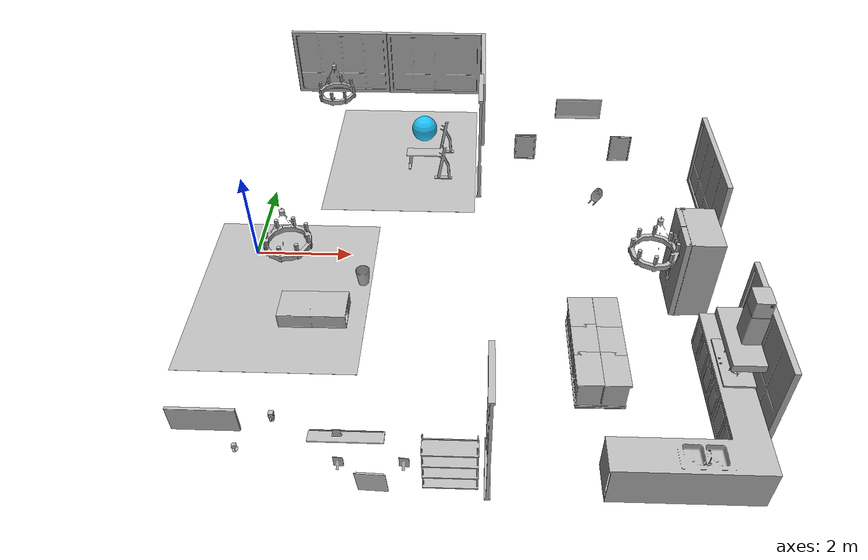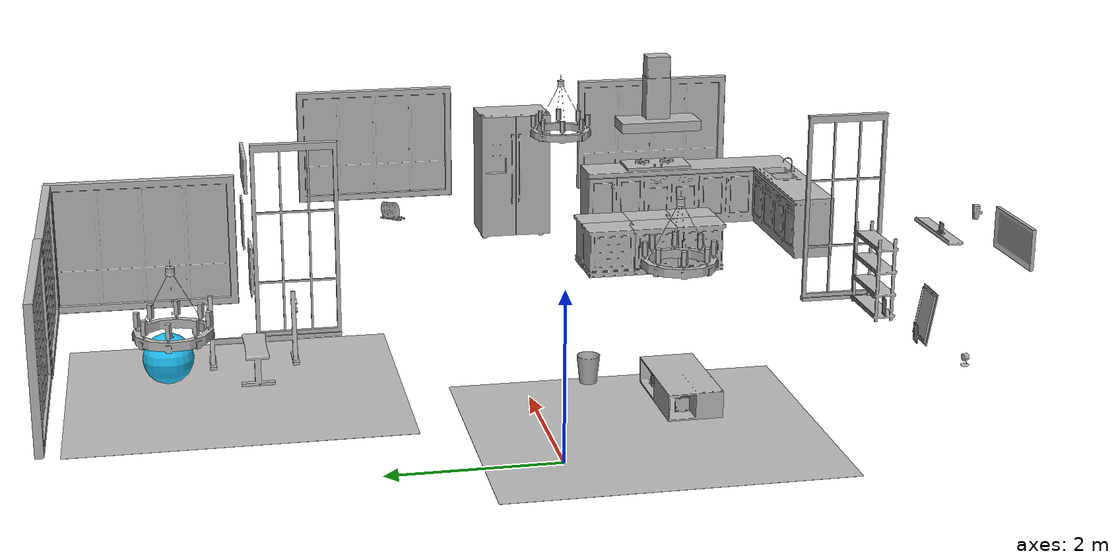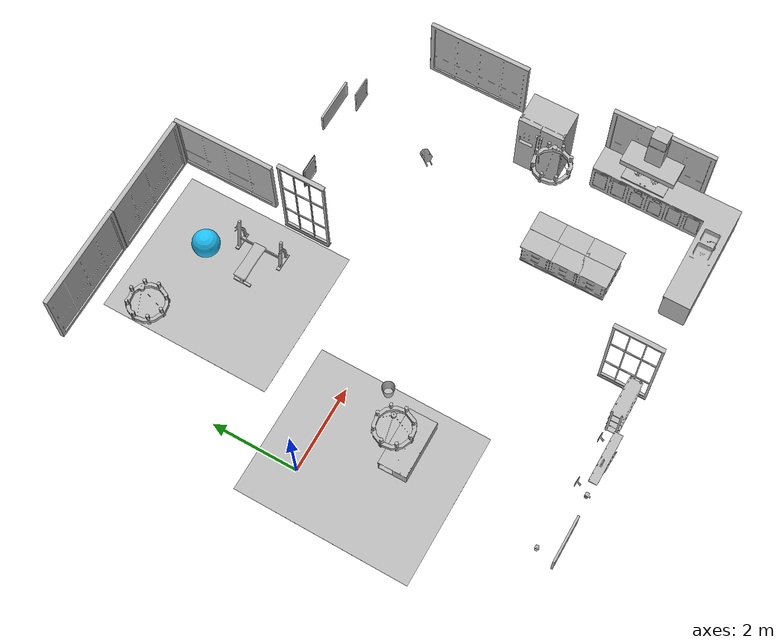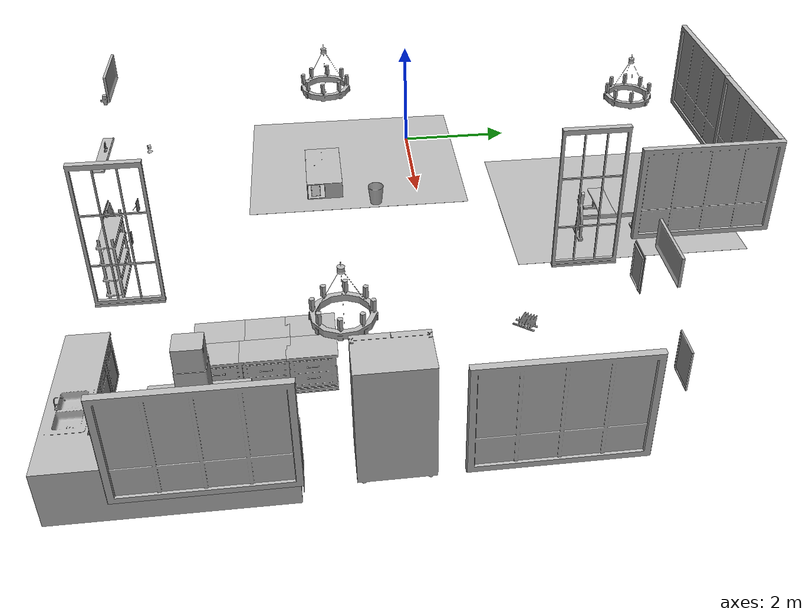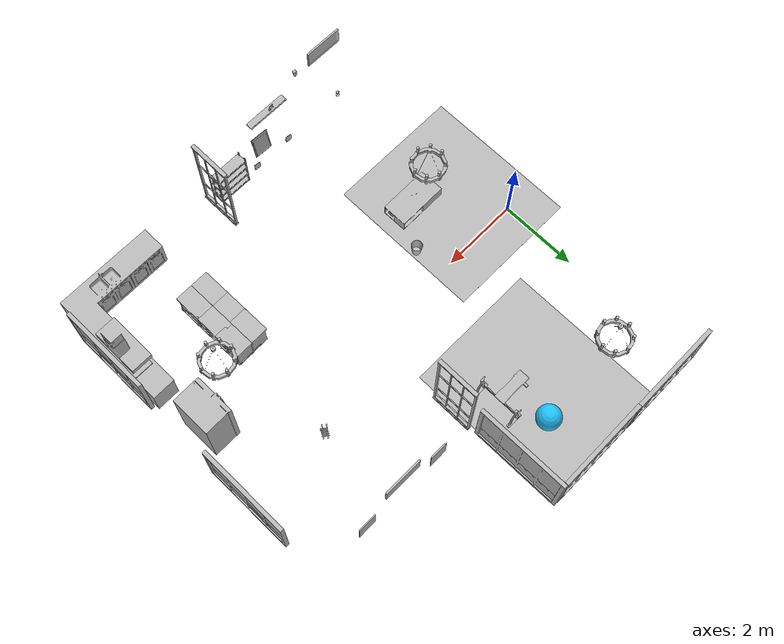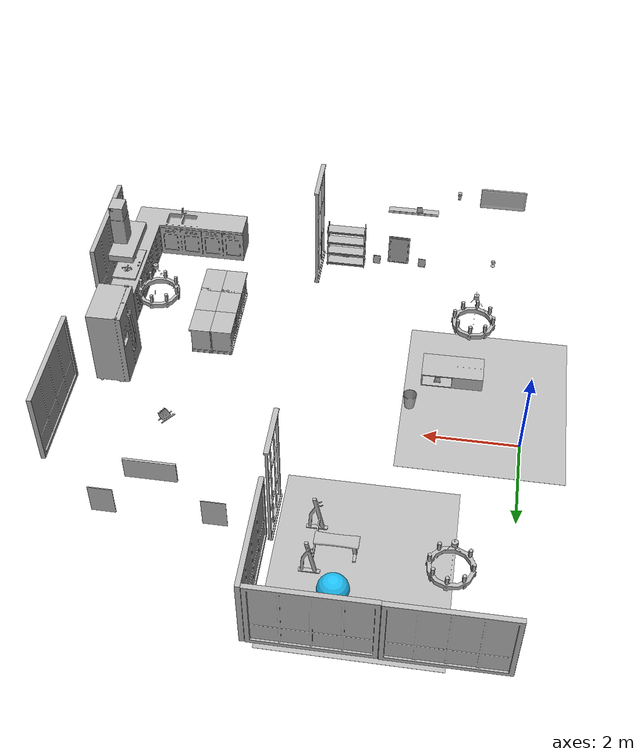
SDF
<sdf version="1.7">
 <world name="default">
  <model name="Ball_01_001">
   <frame name="aws_robomaker_residential_Ball_01::__model__" attached_to="aws_robomaker_residential_Ball_01::link">
    <pose relative_to="__model__">0 0 0 0 -0 0</pose>
   </frame>
   <link name="aws_robomaker_residential_Ball_01::link">
    <inertial>
     <mass>0.12</mass>
     <inertia>
      <ixx>0.030752</ixx>
      <ixy>0</ixy>
      <ixz>0</ixz>
      <iyy>0.030752</iyy>
      <iyz>0</iyz>
      <izz>0.030752</izz>
     </inertia>
    </inertial>
    <collision name="collision">
     <geometry><sphere><radius>0.31</radius></sphere></geometry>
     <surface>
      <friction><ode><mu>0.85</mu><mu2>0.85</mu2></ode></friction>
      <contact><ode><kd>8500</kd><max_vel>5.1</max_vel></ode></contact>
     </surface>
    </collision>
    <visual name="visual">
     <geometry><sphere><radius>0.31</radius></sphere></geometry>
     <material><diffuse>0.12 0.76 0.97 1</diffuse><ambient>0.03 0.21 0.27 1</ambient></material>
     <meta><layer>1</layer></meta>
    </visual>
    <pose relative_to="aws_robomaker_residential_Ball_01::__model__">0 0 0 0 -0 0</pose>
   </link>
   <pose>3.2955 4.22567 0.318684 0 -0 0</pose>
  </model>
  <model name="Board_01_001">
   <frame name="aws_robomaker_residential_Board_01::__model__" attached_to="aws_robomaker_residential_Board_01::link">
    <pose relative_to="__model__">0 0 0 0 -0 0</pose>
   </frame>
   <link name="aws_robomaker_residential_Board_01::link">
    <inertial><mass>1</mass></inertial>
    <collision name="collision">
     <geometry>
      <mesh>
       <uri>model:///aws_robomaker_residential_Board_01/meshes/aws_Board_01_collision.DAE</uri>
       <scale>1 1 1</scale>
      </mesh>
     </geometry>
    </collision>
    <visual name="visual">
     <geometry>
      <mesh><uri>model:///aws_robomaker_residential_Board_01/meshes/aws_Board_01_visual.DAE</uri></mesh>
     </geometry>
     <meta><layer>2</layer></meta>
    </visual>
    <pose relative_to="aws_robomaker_residential_Board_01::__model__">0 0 0 0 -0 0</pose>
   </link>
   <static>1</static>
   <pose>2.77907 -5.3927 1.53817 0 -0 0</pose>
  </model>
  <model name="Chandelier_01_001">
   <frame name="aws_robomaker_residential_Chandelier_01::__model__" attached_to="aws_robomaker_residential_Chandelier_01::link">
    <pose relative_to="__model__">0 0 0 0 -0 0</pose>
   </frame>
   <link name="aws_robomaker_residential_Chandelier_01::link">
    <inertial><mass>1</mass></inertial>
    <collision name="collision">
     <geometry>
      <mesh>
       <uri>model:///aws_robomaker_residential_Chandelier_01/meshes/aws_Chandelier_01_collision.DAE</uri>
       <scale>1 1 1</scale>
      </mesh>
     </geometry>
    </collision>
    <visual name="visual">
     <geometry>
      <mesh><uri>model:///aws_robomaker_residential_Chandelier_01/meshes/aws_Chandelier_01_visual.DAE</uri></mesh>
     </geometry>
     <meta><layer>2</layer></meta>
    </visual>
    <pose relative_to="aws_robomaker_residential_Chandelier_01::__model__">0 0 0 0 -0 0</pose>
   </link>
   <static>1</static>
   <pose>1.22106 4.15574 1.295 0 -0 0</pose>
  </model>
  <model name="Chandelier_01_003">
   <frame name="aws_robomaker_residential_Chandelier_01::__model__" attached_to="aws_robomaker_residential_Chandelier_01::link">
    <pose relative_to="__model__">0 0 0 0 -0 0</pose>
   </frame>
   <link name="aws_robomaker_residential_Chandelier_01::link">
    <inertial><mass>1</mass></inertial>
    <collision name="collision">
     <geometry>
      <mesh>
       <uri>model:///aws_robomaker_residential_Chandelier_01/meshes/aws_Chandelier_01_collision.DAE</uri>
       <scale>1 1 1</scale>
      </mesh>
     </geometry>
    </collision>
    <visual name="visual">
     <geometry>
      <mesh><uri>model:///aws_robomaker_residential_Chandelier_01/meshes/aws_Chandelier_01_visual.DAE</uri></mesh>
     </geometry>
     <meta><layer>2</layer></meta>
    </visual>
    <pose relative_to="aws_robomaker_residential_Chandelier_01::__model__">0 0 0 0 -0 0</pose>
   </link>
   <static>1</static>
   <pose>7.82406 -1.59 1.751 0 -0 0</pose>
  </model>
  <model name="Chandelier_01_004">
   <frame name="aws_robomaker_residential_Chandelier_01::__model__" attached_to="aws_robomaker_residential_Chandelier_01::link">
    <pose relative_to="__model__">0 0 0 0 -0 0</pose>
   </frame>
   <link name="aws_robomaker_residential_Chandelier_01::link">
    <inertial><mass>1</mass></inertial>
    <collision name="collision">
     <geometry>
      <mesh>
       <uri>model:///aws_robomaker_residential_Chandelier_01/meshes/aws_Chandelier_01_collision.DAE</uri>
       <scale>1 1 1</scale>
      </mesh>
     </geometry>
    </collision>
    <visual name="visual">
     <geometry>
      <mesh><uri>model:///aws_robomaker_residential_Chandelier_01/meshes/aws_Chandelier_01_visual.DAE</uri></mesh>
     </geometry>
     <meta><layer>2</layer></meta>
    </visual>
    <pose relative_to="aws_robomaker_residential_Chandelier_01::__model__">0 0 0 0 -0 0</pose>
   </link>
   <static>1</static>
   <pose>1.22106 -1.59204 1.7873 0 -0 0</pose>
  </model>
  <model name="Carpet_01_001">
   <frame name="aws_robomaker_residential_Carpet_01::__model__" attached_to="aws_robomaker_residential_Carpet_01::link">
    <pose relative_to="__model__">0 0 0 0 -0 0</pose>
   </frame>
   <link name="aws_robomaker_residential_Carpet_01::link">
    <inertial><mass>8.1</mass></inertial>
    <collision name="collision">
     <geometry>
      <mesh>
       <uri>model:///aws_robomaker_residential_Carpet_01/meshes/aws_Carpet_01_collision.DAE</uri>
       <scale>1 1 0.95</scale>
      </mesh>
     </geometry>
     <pose>0 0 -0.01 0 -0 0</pose>
    </collision>
    <visual name="visual">
     <geometry>
      <mesh><uri>model:///aws_robomaker_residential_Carpet_01/meshes/aws_Carpet_01_visual.DAE</uri></mesh>
     </geometry>
     <meta><layer>1</layer></meta>
    </visual>
    <pose relative_to="aws_robomaker_residential_Carpet_01::__model__">0 0 0 0 -0 0</pose>
   </link>
   <static>1</static>
   <pose>0.78505 -1.10665 0.001106 0 -0 0</pose>
  </model>
  <model name="Carpet_01_002">
   <frame name="aws_robomaker_residential_Carpet_01::__model__" attached_to="aws_robomaker_residential_Carpet_01::link">
    <pose relative_to="__model__">0 0 0 0 -0 0</pose>
   </frame>
   <link name="aws_robomaker_residential_Carpet_01::link">
    <inertial><mass>8.1</mass></inertial>
    <collision name="collision">
     <geometry>
      <mesh>
       <uri>model:///aws_robomaker_residential_Carpet_01/meshes/aws_Carpet_01_collision.DAE</uri>
       <scale>1 1 0.95</scale>
      </mesh>
     </geometry>
     <pose>0 0 -0.01 0 -0 0</pose>
    </collision>
    <visual name="visual">
     <geometry>
      <mesh><uri>model:///aws_robomaker_residential_Carpet_01/meshes/aws_Carpet_01_visual.DAE</uri></mesh>
     </geometry>
     <meta><layer>1</layer></meta>
    </visual>
    <pose relative_to="aws_robomaker_residential_Carpet_01::__model__">0 0 0 0 -0 0</pose>
   </link>
   <static>1</static>
   <pose>2.85405 3.45 0.000585 0 -0 0</pose>
  </model>
  <model name="SecurityCamera_01_001">
   <frame name="aws_robomaker_residential_SecurityCamera_01::__model__" attached_to="aws_robomaker_residential_SecurityCamera_01::link">
    <pose relative_to="__model__">0 0 0 0 -0 0</pose>
   </frame>
   <link name="aws_robomaker_residential_SecurityCamera_01::link">
    <inertial>
     <mass>1</mass>
     <inertia>
      <ixx>18.2222</ixx>
      <ixy>0</ixy>
      <ixz>0</ixz>
      <iyy>18.2222</iyy>
      <iyz>0</iyz>
      <izz>0.0018767</izz>
     </inertia>
    </inertial>
    <collision name="collision">
     <geometry>
      <mesh>
       <uri>model:///aws_robomaker_residential_SecurityCamera_01/meshes/aws_SecurityCamera_01_collision.DAE</uri>
       <scale>1 1 1</scale>
      </mesh>
     </geometry>
    </collision>
    <visual name="visual">
     <geometry>
      <mesh>
       <uri>model:///aws_robomaker_residential_SecurityCamera_01/meshes/aws_SecurityCamera_01_visual.DAE</uri>
      </mesh>
     </geometry>
     <meta><layer>2</layer></meta>
    </visual>
    <pose relative_to="aws_robomaker_residential_SecurityCamera_01::__model__">0 0 0 0 -0 0</pose>
   </link>
   <pose>0.842134 -4.99629 0.495067 0 0 -2.84104</pose>
  </model>
  <model name="CoffeeTable_01_001">
   <frame name="aws_robomaker_residential_CoffeeTable_01::__model__" attached_to="aws_robomaker_residential_CoffeeTable_01::link">
    <pose relative_to="__model__">0 0 0 0 -0 0</pose>
   </frame>
   <link name="aws_robomaker_residential_CoffeeTable_01::link">
    <inertial>
     <mass>21.7</mass>
     <inertia><ixx>0.81375</ixx><ixy>0</ixy><ixz>0</ixz><iyy>2.76675</iyy><iyz>0</iyz><izz>3.254</izz></inertia>
    </inertial>
    <collision name="collision">
     <geometry>
      <mesh>
       <uri>model:///aws_robomaker_residential_CoffeeTable_01/meshes/aws_CoffeeTable_01_collision.DAE</uri>
       <scale>1 1 1</scale>
      </mesh>
     </geometry>
     <surface><contact><ode><max_vel>0.01</max_vel></ode></contact></surface>
    </collision>
    <visual name="visual">
     <geometry>
      <mesh><uri>model:///aws_robomaker_residential_CoffeeTable_01/meshes/aws_CoffeeTable_01_visual.DAE</uri></mesh>
     </geometry>
     <meta><layer>1</layer></meta>
    </visual>
    <pose relative_to="aws_robomaker_residential_CoffeeTable_01::__model__">0 0 0 0 -0 0</pose>
   </link>
   <static>0</static>
   <pose>1.5123 -1.73344 0.041983 0 -0 0.01</pose>
  </model>
  <model name="CookingBench_01_001">
   <frame name="aws_robomaker_residential_CookingBench_01::__model__" attached_to="aws_robomaker_residential_CookingBench_01::link">
    <pose relative_to="__model__">0 0 0 0 -0 0</pose>
   </frame>
   <link name="aws_robomaker_residential_CookingBench_01::link">
    <inertial>
     <mass>1</mass>
     <inertia><ixx>1</ixx><ixy>0</ixy><ixz>0</ixz><iyy>1</iyy><iyz>0</iyz><izz>1</izz></inertia>
    </inertial>
    <collision name="collision">
     <geometry>
      <mesh>
       <uri>model:///aws_robomaker_residential_CookingBench_01/meshes/aws_CookingBench_01_collision.DAE</uri>
       <scale>1 1 1</scale>
      </mesh>
     </geometry>
    </collision>
    <visual name="visual">
     <geometry>
      <mesh>
       <uri>model:///aws_robomaker_residential_CookingBench_01/meshes/aws_CookingBench_01_visual.DAE</uri>
      </mesh>
     </geometry>
     <meta><layer>1</layer></meta>
    </visual>
    <pose relative_to="aws_robomaker_residential_CookingBench_01::__model__">0 0 0 0 -0 0</pose>
   </link>
   <pose>9.03838 -3.35114 0.90361 0 -0 3.13713</pose>
  </model>
  <model name="FitnessEquipment_01_001">
   <frame name="aws_robomaker_residential_FitnessEquipment_01::__model__" attached_to="aws_robomaker_residential_FitnessEquipment_01::link">
    <pose relative_to="__model__">0 0 0 0 -0 0</pose>
   </frame>
   <link name="aws_robomaker_residential_FitnessEquipment_01::link">
    <inertial>
     <mass>80</mass>
     <inertia><ixx>1</ixx><ixy>0</ixy><ixz>0</ixz><iyy>1</iyy><iyz>0</iyz><izz>1</izz></inertia>
    </inertial>
    <collision name="collision">
     <geometry>
      <mesh>
       <uri>model:///aws_robomaker_residential_FitnessEquipment_01/meshes/aws_FitnessEquipment_01_collision.DAE</uri>
       <scale>1 1 1</scale>
      </mesh>
     </geometry>
    </collision>
    <visual name="visual">
     <geometry>
      <mesh>
       <uri>model:///aws_robomaker_residential_FitnessEquipment_01/meshes/aws_FitnessEquipment_01_visual.DAE</uri>
      </mesh>
     </geometry>
     <meta><layer>1</layer></meta>
    </visual>
    <pose relative_to="aws_robomaker_residential_FitnessEquipment_01::__model__">0 0 0 0 -0 0</pose>
   </link>
   <static>0</static>
   <pose>3.48472 3.1691 0.003168 0 -0 0</pose>
  </model>
  <model name="FoldingDoor_02_001">
   <frame name="aws_robomaker_residential_FoldingDoor_02::__model__" attached_to="aws_robomaker_residential_FoldingDoor_02::link">
    <pose relative_to="__model__">0 0 0 0 -0 0</pose>
   </frame>
   <link name="aws_robomaker_residential_FoldingDoor_02::link">
    <inertial><mass>1</mass></inertial>
    <collision name="collision">
     <geometry>
      <mesh>
       <uri>model:///aws_robomaker_residential_FoldingDoor_02/meshes/aws_FoldingDoor_02_collision.DAE</uri>
       <scale>1 1 1</scale>
      </mesh>
     </geometry>
    </collision>
    <visual name="visual">
     <geometry>
      <mesh><uri>model:///aws_robomaker_residential_FoldingDoor_02/meshes/aws_FoldingDoor_02_visual.DAE</uri></mesh>
     </geometry>
     <meta><layer>2</layer></meta>
    </visual>
    <pose relative_to="aws_robomaker_residential_FoldingDoor_02::__model__">0 0 0 0 -0 0</pose>
   </link>
   <static>1</static>
   <pose>4.67423 2.46451 0 0 -0 3.14159</pose>
  </model>
  <model name="FoldingDoor_02_002">
   <frame name="aws_robomaker_residential_FoldingDoor_02::__model__" attached_to="aws_robomaker_residential_FoldingDoor_02::link">
    <pose relative_to="__model__">0 0 0 0 -0 0</pose>
   </frame>
   <link name="aws_robomaker_residential_FoldingDoor_02::link">
    <inertial><mass>1</mass></inertial>
    <collision name="collision">
     <geometry>
      <mesh>
       <uri>model:///aws_robomaker_residential_FoldingDoor_02/meshes/aws_FoldingDoor_02_collision.DAE</uri>
       <scale>1 1 1</scale>
      </mesh>
     </geometry>
    </collision>
    <visual name="visual">
     <geometry>
      <mesh><uri>model:///aws_robomaker_residential_FoldingDoor_02/meshes/aws_FoldingDoor_02_visual.DAE</uri></mesh>
     </geometry>
     <meta><layer>2</layer></meta>
    </visual>
    <pose relative_to="aws_robomaker_residential_FoldingDoor_02::__model__">0 0 0 0 -0 0</pose>
   </link>
   <static>1</static>
   <pose>4.8912 -4.84968 0 0 -0 0</pose>
  </model>
  <model name="KitchenCabinet_01_001">
   <frame name="aws_robomaker_residential_KitchenCabinet_01::__model__" attached_to="aws_robomaker_residential_KitchenCabinet_01::link">
    <pose relative_to="__model__">0 0 0 0 -0 0</pose>
   </frame>
   <link name="aws_robomaker_residential_KitchenCabinet_01::link">
    <inertial><mass>1</mass></inertial>
    <collision name="collision">
     <geometry>
      <mesh>
       <uri>model:///aws_robomaker_residential_KitchenCabinet_01/meshes/aws_KitchenCabinet_01_collision.DAE</uri>
       <scale>1 1 1</scale>
      </mesh>
     </geometry>
    </collision>
    <visual name="visual">
     <geometry>
      <mesh>
       <uri>model:///aws_robomaker_residential_KitchenCabinet_01/meshes/aws_KitchenCabinet_01_visual.DAE</uri>
      </mesh>
     </geometry>
     <meta><layer>1</layer></meta>
    </visual>
    <pose relative_to="aws_robomaker_residential_KitchenCabinet_01::__model__">0 0 0 0 -0 0</pose>
   </link>
   <static>1</static>
   <pose>8.00201 -3.83651 0.012068 0 0 -3.14</pose>
  </model>
  <model name="LightC_01_001">
   <frame name="aws_robomaker_residential_LightC_01::__model__" attached_to="aws_robomaker_residential_LightC_01::link">
    <pose relative_to="__model__">0 0 0 0 -0 0</pose>
   </frame>
   <link name="aws_robomaker_residential_LightC_01::link">
    <inertial>
     <mass>1</mass>
     <inertia><ixx>1</ixx><ixy>0</ixy><ixz>0</ixz><iyy>1</iyy><iyz>0</iyz><izz>1</izz></inertia>
    </inertial>
    <collision name="collision">
     <geometry>
      <mesh>
       <uri>model:///aws_robomaker_residential_LightC_01/meshes/aws_LightC_01_collision.DAE</uri>
       <scale>1 1 1</scale>
      </mesh>
     </geometry>
    </collision>
    <visual name="visual">
     <geometry>
      <mesh><uri>model:///aws_robomaker_residential_LightC_01/meshes/aws_LightC_01_visual.DAE</uri></mesh>
     </geometry>
     <meta><layer>2</layer></meta>
    </visual>
    <pose relative_to="aws_robomaker_residential_LightC_01::__model__">0 0 0 0 -0 0</pose>
   </link>
   <static>0</static>
   <pose>1.76957 -5.44437 2 0 -0 0</pose>
  </model>
  <model name="PortraitB_02">
   <frame name="aws_robomaker_residential_PortraitB_02::__model__" attached_to="aws_robomaker_residential_PortraitB_02::link">
    <pose relative_to="__model__">0 0 0 0 -0 0</pose>
   </frame>
   <link name="aws_robomaker_residential_PortraitB_02::link">
    <inertial><mass>1</mass></inertial>
    <collision name="collision">
     <geometry>
      <mesh>
       <uri>model:///aws_robomaker_residential_PortraitB_02/meshes/aws_PortraitB_01_collision.DAE</uri>
       <scale>1 1 1</scale>
      </mesh>
     </geometry>
    </collision>
    <visual name="visual">
     <geometry>
      <mesh><uri>model:///aws_robomaker_residential_PortraitB_02/meshes/aws_PortraitB_01_visual.DAE</uri></mesh>
     </geometry>
     <meta><layer>2</layer></meta>
    </visual>
    <pose relative_to="aws_robomaker_residential_PortraitB_02::__model__">0 0 0 0 -0 0</pose>
   </link>
   <static>1</static>
   <pose>5.73702 3.08031 0.3 0 -0 0</pose>
  </model>
  <model name="PortraitB_03">
   <frame name="aws_robomaker_residential_PortraitB_03::__model__" attached_to="aws_robomaker_residential_PortraitB_03::link">
    <pose relative_to="__model__">0 0 0 0 -0 0</pose>
   </frame>
   <link name="aws_robomaker_residential_PortraitB_03::link">
    <inertial><mass>1</mass></inertial>
    <collision name="collision">
     <geometry>
      <mesh>
       <uri>model:///aws_robomaker_residential_PortraitB_03/meshes/aws_PortraitB_01_collision.DAE</uri>
       <scale>1 1 1</scale>
      </mesh>
     </geometry>
    </collision>
    <visual name="visual">
     <geometry>
      <mesh><uri>model:///aws_robomaker_residential_PortraitB_03/meshes/aws_PortraitB_01_visual.DAE</uri></mesh>
     </geometry>
     <meta><layer>2</layer></meta>
    </visual>
    <pose relative_to="aws_robomaker_residential_PortraitB_03::__model__">0 0 0 0 -0 0</pose>
   </link>
   <static>1</static>
   <pose>3.07138 -5.34937 0.005494 -0.168428 -0 3.10423</pose>
  </model>
  <model name="PortraitA_02">
   <frame name="aws_robomaker_residential_PortraitA_02::__model__" attached_to="aws_robomaker_residential_PortraitA_02::link">
    <pose relative_to="__model__">0 0 0 0 -0 0</pose>
   </frame>
   <link name="aws_robomaker_residential_PortraitA_02::link">
    <inertial><mass>1</mass></inertial>
    <collision name="collision">
     <geometry>
      <mesh>
       <uri>model:///aws_robomaker_residential_PortraitA_02/meshes/aws_PortraitA_01_collision.DAE</uri>
       <scale>1 1 1</scale>
      </mesh>
     </geometry>
    </collision>
    <visual name="visual">
     <geometry>
      <mesh><uri>model:///aws_robomaker_residential_PortraitA_02/meshes/aws_PortraitA_01_visual.DAE</uri></mesh>
     </geometry>
     <meta><layer>2</layer></meta>
    </visual>
    <pose relative_to="aws_robomaker_residential_PortraitA_02::__model__">0 0 0 0 -0 0</pose>
   </link>
   <static>1</static>
   <pose>7.93702 3.08031 0.3 0 -0 3.14</pose>
  </model>
  <model name="PortraitD_01">
   <frame name="aws_robomaker_residential_PortraitD_01::__model__" attached_to="aws_robomaker_residential_PortraitD_01::link">
    <pose relative_to="__model__">0 0 0 0 -0 0</pose>
   </frame>
   <link name="aws_robomaker_residential_PortraitD_01::link">
    <inertial><mass>1.5</mass></inertial>
    <collision name="collision">
     <geometry>
      <mesh>
       <uri>model:///aws_robomaker_residential_PortraitD_01/meshes/aws_PortraitD_01_collision.DAE</uri>
       <scale>1 1 1</scale>
      </mesh>
     </geometry>
    </collision>
    <visual name="visual">
     <geometry>
      <mesh><uri>model:///aws_robomaker_residential_PortraitD_01/meshes/aws_PortraitD_01_visual.DAE</uri></mesh>
     </geometry>
     <meta><layer>2</layer></meta>
    </visual>
    <pose relative_to="aws_robomaker_residential_PortraitD_01::__model__">0 0 0 0 -0 0</pose>
   </link>
   <static>1</static>
   <pose>0.789763 -5.47872 1.8 0 -0 3.13853</pose>
  </model>
  <model name="PortraitD_02">
   <frame name="aws_robomaker_residential_PortraitD_02::__model__" attached_to="aws_robomaker_residential_PortraitD_02::link">
    <pose relative_to="__model__">0 0 0 0 -0 0</pose>
   </frame>
   <link name="aws_robomaker_residential_PortraitD_02::link">
    <inertial><mass>1.5</mass></inertial>
    <collision name="collision">
     <geometry>
      <mesh>
       <uri>model:///aws_robomaker_residential_PortraitD_02/meshes/aws_PortraitD_01_collision.DAE</uri>
       <scale>1 1 1</scale>
      </mesh>
     </geometry>
    </collision>
    <visual name="visual">
     <geometry>
      <mesh><uri>model:///aws_robomaker_residential_PortraitD_02/meshes/aws_PortraitD_01_visual.DAE</uri></mesh>
     </geometry>
     <meta><layer>2</layer></meta>
    </visual>
    <pose relative_to="aws_robomaker_residential_PortraitD_02::__model__">0 0 0 0 -0 0</pose>
   </link>
   <static>1</static>
   <pose>6.87018 3.08031 1.48844 0 -0 0</pose>
  </model>
  <model name="DeskPortraitA_02">
   <frame name="aws_robomaker_residential_DeskPortraitA_02::__model__" attached_to="aws_robomaker_residential_DeskPortraitA_02::link">
    <pose relative_to="__model__">0 0 0 0 -0 0</pose>
   </frame>
   <link name="aws_robomaker_residential_DeskPortraitA_02::link">
    <inertial>
     <mass>1</mass>
     <inertia><ixx>0.0835</ixx><ixy>0</ixy><ixz>0</ixz><iyy>0.16</iyy><iyz>0</iyz><izz>0.08347</izz></inertia>
    </inertial>
    <collision name="collision">
     <geometry>
      <mesh>
       <uri>model:///aws_robomaker_residential_DeskPortraitA_02/meshes/aws_DeskPortraitA_01_collision.DAE</uri>
       <scale>1 1 1</scale>
      </mesh>
     </geometry>
    </collision>
    <visual name="visual">
     <geometry>
      <mesh>
       <uri>model:///aws_robomaker_residential_DeskPortraitA_02/meshes/aws_DeskPortraitA_01_visual.DAE</uri>
      </mesh>
     </geometry>
     <meta><layer>1</layer></meta>
    </visual>
    <pose relative_to="aws_robomaker_residential_DeskPortraitA_02::__model__">0 0 0 0 -0 0</pose>
   </link>
   <pose>2.04608 -1.89293 0.070388 -0.018328 -0.000441 1.57622</pose>
  </model>
  <model name="DeskPortraitC_02">
   <frame name="aws_robomaker_residential_DeskPortraitC_02::__model__" attached_to="aws_robomaker_residential_DeskPortraitC_02::link">
    <pose relative_to="__model__">0 0 0 0 -0 0</pose>
   </frame>
   <link name="aws_robomaker_residential_DeskPortraitC_02::link">
    <inertial>
     <mass>1</mass>
     <inertia><ixx>0.0835</ixx><ixy>0</ixy><ixz>0</ixz><iyy>0.16</iyy><iyz>0</iyz><izz>0.08347</izz></inertia>
    </inertial>
    <collision name="collision">
     <geometry>
      <mesh>
       <uri>model:///aws_robomaker_residential_DeskPortraitC_02/meshes/aws_DeskPortraitC_01_collision.DAE</uri>
       <scale>1 1 1</scale>
      </mesh>
     </geometry>
    </collision>
    <visual name="visual">
     <geometry>
      <mesh>
       <uri>model:///aws_robomaker_residential_DeskPortraitC_02/meshes/aws_DeskPortraitC_01_visual.DAE</uri>
      </mesh>
     </geometry>
     <meta><layer>1</layer></meta>
    </visual>
    <pose relative_to="aws_robomaker_residential_DeskPortraitC_02::__model__">0 0 0 0 -0 0</pose>
   </link>
   <pose>0.964613 -1.58695 0.127676 0.001614 -0.000545 -1.5787</pose>
  </model>
  <model name="DeskPortraitD_01">
   <frame name="aws_robomaker_residential_DeskPortraitD_01::__model__" attached_to="aws_robomaker_residential_DeskPortraitD_01::link">
    <pose relative_to="__model__">0 0 0 0 -0 0</pose>
   </frame>
   <link name="aws_robomaker_residential_DeskPortraitD_01::link">
    <inertial>
     <mass>0.4</mass>
     <inertia><ixx>0.0616</ixx><ixy>0</ixy><ixz>0</ixz><iyy>0.1313</iyy><iyz>0</iyz><izz>0.0803</izz></inertia>
    </inertial>
    <collision name="collision">
     <geometry>
      <mesh>
       <uri>model:///aws_robomaker_residential_DeskPortraitD_01/meshes/aws_DeskPortraitD_01_collision.DAE</uri>
       <scale>1 1 1</scale>
      </mesh>
     </geometry>
     <surface>
      <friction><ode><mu>0.7</mu><mu2>0.7</mu2></ode></friction>
      <contact><ode><kd>28500</kd></ode></contact>
     </surface>
    </collision>
    <visual name="visual">
     <geometry>
      <mesh>
       <uri>model:///aws_robomaker_residential_DeskPortraitD_01/meshes/aws_DeskPortraitD_01_visual.DAE</uri>
      </mesh>
     </geometry>
     <meta><layer>1</layer></meta>
    </visual>
    <pose relative_to="aws_robomaker_residential_DeskPortraitD_01::__model__">0 0 0 0 -0 0</pose>
   </link>
   <pose>2.64556 -5.37622 1.57374 0 0 -3.11283</pose>
  </model>
  <model name="DeskPortraitD_03">
   <frame name="aws_robomaker_residential_DeskPortraitD_03::__model__" attached_to="aws_robomaker_residential_DeskPortraitD_03::link">
    <pose relative_to="__model__">0 0 0 0 -0 0</pose>
   </frame>
   <link name="aws_robomaker_residential_DeskPortraitD_03::link">
    <inertial>
     <mass>0.4</mass>
     <inertia><ixx>0.0616</ixx><ixy>0</ixy><ixz>0</ixz><iyy>0.1313</iyy><iyz>0</iyz><izz>0.0803</izz></inertia>
    </inertial>
    <collision name="collision">
     <geometry>
      <mesh>
       <uri>model:///aws_robomaker_residential_DeskPortraitD_03/meshes/aws_DeskPortraitD_01_collision.DAE</uri>
       <scale>1 1 1</scale>
      </mesh>
     </geometry>
     <surface>
      <friction><ode><mu>0.7</mu><mu2>0.7</mu2></ode></friction>
      <contact><ode><kd>28500</kd></ode></contact>
     </surface>
    </collision>
    <visual name="visual">
     <geometry>
      <mesh>
       <uri>model:///aws_robomaker_residential_DeskPortraitD_03/meshes/aws_DeskPortraitD_01_visual.DAE</uri>
      </mesh>
     </geometry>
     <meta><layer>1</layer></meta>
    </visual>
    <pose relative_to="aws_robomaker_residential_DeskPortraitD_03::__model__">0 0 0 0 -0 0</pose>
   </link>
   <pose>1.82673 -1.46488 0.126208 1e-05 6e-06 -3.11438</pose>
  </model>
  <model name="DeskPortraitD_04">
   <frame name="aws_robomaker_residential_DeskPortraitD_04::__model__" attached_to="aws_robomaker_residential_DeskPortraitD_04::link">
    <pose relative_to="__model__">0 0 0 0 -0 0</pose>
   </frame>
   <link name="aws_robomaker_residential_DeskPortraitD_04::link">
    <inertial>
     <mass>0.4</mass>
     <inertia><ixx>0.0616</ixx><ixy>0</ixy><ixz>0</ixz><iyy>0.1313</iyy><iyz>0</iyz><izz>0.0803</izz></inertia>
    </inertial>
    <collision name="collision">
     <geometry>
      <mesh>
       <uri>model:///aws_robomaker_residential_DeskPortraitD_04/meshes/aws_DeskPortraitD_01_collision.DAE</uri>
       <scale>1 1 1</scale>
      </mesh>
     </geometry>
     <surface>
      <friction><ode><mu>0.7</mu><mu2>0.7</mu2></ode></friction>
      <contact><ode><kd>28500</kd></ode></contact>
     </surface>
    </collision>
    <visual name="visual">
     <geometry>
      <mesh>
       <uri>model:///aws_robomaker_residential_DeskPortraitD_04/meshes/aws_DeskPortraitD_01_visual.DAE</uri>
      </mesh>
     </geometry>
     <meta><layer>1</layer></meta>
    </visual>
    <pose relative_to="aws_robomaker_residential_DeskPortraitD_04::__model__">0 0 0 0 -0 0</pose>
   </link>
   <pose>4.30213 -5.17657 0.202496 0.007118 -1e-06 3.04668</pose>
  </model>
  <model name="DeskPortraitB_01">
   <frame name="aws_robomaker_residential_DeskPortraitB_01::__model__" attached_to="aws_robomaker_residential_DeskPortraitB_01::link">
    <pose relative_to="__model__">0 0 0 0 -0 0</pose>
   </frame>
   <link name="aws_robomaker_residential_DeskPortraitB_01::link">
    <inertial>
     <mass>1</mass>
     <inertia><ixx>0.0135</ixx><ixy>0</ixy><ixz>0</ixz><iyy>0.02</iyy><iyz>0</iyz><izz>0.01347</izz></inertia>
    </inertial>
    <collision name="collision">
     <geometry>
      <mesh>
       <uri>model:///aws_robomaker_residential_DeskPortraitB_01/meshes/aws_DeskPortraitB_01_collision.DAE</uri>
       <scale>1 1 1</scale>
      </mesh>
     </geometry>
    </collision>
    <visual name="visual">
     <geometry>
      <mesh>
       <uri>model:///aws_robomaker_residential_DeskPortraitB_01/meshes/aws_DeskPortraitB_01_visual.DAE</uri>
      </mesh>
     </geometry>
     <meta><layer>1</layer></meta>
    </visual>
    <pose relative_to="aws_robomaker_residential_DeskPortraitB_01::__model__">0 0 0 0 -0 0</pose>
   </link>
   <pose>3.547 -5.08795 0.202496 0.007118 -1e-06 3.04668</pose>
  </model>
  <model name="DeskPortraitB_02">
   <frame name="aws_robomaker_residential_DeskPortraitB_02::__model__" attached_to="aws_robomaker_residential_DeskPortraitB_02::link">
    <pose relative_to="__model__">0 0 0 0 -0 0</pose>
   </frame>
   <link name="aws_robomaker_residential_DeskPortraitB_02::link">
    <inertial>
     <mass>1</mass>
     <inertia><ixx>0.0135</ixx><ixy>0</ixy><ixz>0</ixz><iyy>0.02</iyy><iyz>0</iyz><izz>0.01347</izz></inertia>
    </inertial>
    <collision name="collision">
     <geometry>
      <mesh>
       <uri>model:///aws_robomaker_residential_DeskPortraitB_02/meshes/aws_DeskPortraitB_01_collision.DAE</uri>
       <scale>1 1 1</scale>
      </mesh>
     </geometry>
    </collision>
    <visual name="visual">
     <geometry>
      <mesh>
       <uri>model:///aws_robomaker_residential_DeskPortraitB_02/meshes/aws_DeskPortraitB_01_visual.DAE</uri>
      </mesh>
     </geometry>
     <meta><layer>1</layer></meta>
    </visual>
    <pose relative_to="aws_robomaker_residential_DeskPortraitB_02::__model__">0 0 0 0 -0 0</pose>
   </link>
   <pose>2.48608 -5.10457 0.202496 0.007118 -1e-06 3.04668</pose>
  </model>
  <model name="Rangehood_01_001">
   <frame name="aws_robomaker_residential_Rangehood_01::__model__" attached_to="aws_robomaker_residential_Rangehood_01::link">
    <pose relative_to="__model__">0 0 0 0 -0 0</pose>
   </frame>
   <link name="aws_robomaker_residential_Rangehood_01::link">
    <inertial><mass>1</mass></inertial>
    <collision name="collision">
     <geometry>
      <mesh>
       <uri>model:///aws_robomaker_residential_Rangehood_01/meshes/aws_Rangehood_01_collision.DAE</uri>
       <scale>1 1 1</scale>
      </mesh>
     </geometry>
    </collision>
    <visual name="visual">
     <geometry>
      <mesh><uri>model:///aws_robomaker_residential_Rangehood_01/meshes/aws_Rangehood_01_visual.DAE</uri></mesh>
     </geometry>
     <meta><layer>2</layer></meta>
    </visual>
    <pose relative_to="aws_robomaker_residential_Rangehood_01::__model__">0 0 0 0 -0 0</pose>
   </link>
   <static>1</static>
   <pose>9.01979 -3.36994 1.50761 0 -0 0</pose>
  </model>
  <model name="Refrigerator_01_001">
   <frame name="aws_robomaker_residential_Refrigerator_01::__model__" attached_to="aws_robomaker_residential_Refrigerator_01::link">
    <pose relative_to="__model__">0 0 0 0 -0 0</pose>
   </frame>
   <link name="aws_robomaker_residential_Refrigerator_01::link">
    <inertial>
     <mass>1</mass>
     <inertia><ixx>1</ixx><ixy>0</ixy><ixz>0</ixz><iyy>1</iyy><iyz>0</iyz><izz>1</izz></inertia>
    </inertial>
    <collision name="collision">
     <geometry>
      <mesh>
       <uri>model:///aws_robomaker_residential_Refrigerator_01/meshes/aws_Refrigerator_01_collision.DAE</uri>
       <scale>1 1 1</scale>
      </mesh>
     </geometry>
    </collision>
    <visual name="visual">
     <geometry>
      <mesh>
       <uri>model:///aws_robomaker_residential_Refrigerator_01/meshes/aws_Refrigerator_01_visual.DAE</uri>
      </mesh>
     </geometry>
     <meta><layer>1</layer></meta>
    </visual>
    <pose relative_to="aws_robomaker_residential_Refrigerator_01::__model__">0 0 0 0 -0 0</pose>
   </link>
   <static>0</static>
   <pose>8.70273 -1.03203 0 0 0 -1.5635</pose>
  </model>
  <model name="ShoeRack_01_001">
   <frame name="aws_robomaker_residential_ShoeRack_01::__model__" attached_to="aws_robomaker_residential_ShoeRack_01::link">
    <pose relative_to="__model__">0 0 0 0 -0 0</pose>
   </frame>
   <link name="aws_robomaker_residential_ShoeRack_01::link">
    <inertial>
     <mass>6</mass>
     <inertia>
      <ixx>0.02</ixx>
      <ixy>0</ixy>
      <ixz>0</ixz>
      <iyy>0.04</iyy>
      <iyz>0</iyz>
      <ixx>0.02</ixx>
      <izz>1</izz>
     </inertia>
    </inertial>
    <collision name="collision">
     <geometry>
      <mesh>
       <uri>model:///aws_robomaker_residential_ShoeRack_01/meshes/aws_ShoeRack_01_collision.DAE</uri>
       <scale>1 1 1</scale>
      </mesh>
     </geometry>
     <surface>
      <friction><ode><mu>0.2</mu><mu2>0.2</mu2></ode></friction>
      <contact><ode><kd>2500</kd></ode></contact>
     </surface>
    </collision>
    <visual name="visual">
     <geometry>
      <mesh><uri>model:///aws_robomaker_residential_ShoeRack_01/meshes/aws_ShoeRack_01_visual.DAE</uri></mesh>
     </geometry>
     <meta><layer>1</layer></meta>
    </visual>
    <pose relative_to="aws_robomaker_residential_ShoeRack_01::__model__">0 0 0 0 -0 0</pose>
   </link>
   <pose>4.29798 -5.17357 0 0 -0 0</pose>
  </model>
  <model name="Tableware_01_001">
   <frame name="aws_robomaker_residential_Tableware_01::__model__" attached_to="aws_robomaker_residential_Tableware_01::link">
    <pose relative_to="__model__">0 0 0 0 -0 0</pose>
   </frame>
   <link name="aws_robomaker_residential_Tableware_01::link">
    <inertial>
     <mass>1</mass>
     <inertia><ixx>1</ixx><ixy>0</ixy><ixz>0</ixz><iyy>1</iyy><iyz>0</iyz><izz>1</izz></inertia>
    </inertial>
    <collision name="collision">
     <geometry>
      <mesh>
       <uri>model:///aws_robomaker_residential_Tableware_01/meshes/aws_Tableware_01_collision.DAE</uri>
       <scale>1 1 1</scale>
      </mesh>
     </geometry>
    </collision>
    <visual name="visual">
     <geometry>
      <mesh><uri>model:///aws_robomaker_residential_Tableware_01/meshes/aws_Tableware_01_visual.DAE</uri></mesh>
     </geometry>
     <meta><layer>1</layer></meta>
    </visual>
    <pose relative_to="aws_robomaker_residential_Tableware_01::__model__">0 0 0 0 -0 0</pose>
   </link>
   <pose>7.15317 0.982767 0.817812 -0.001238 -0.000976 1.02476</pose>
  </model>
  <model name="Trash_01_001">
   <frame name="aws_robomaker_residential_Trash_01::__model__" attached_to="aws_robomaker_residential_Trash_01::link">
    <pose relative_to="__model__">0 0 0 0 -0 0</pose>
   </frame>
   <link name="aws_robomaker_residential_Trash_01::link">
    <inertial>
     <mass>0.1</mass>
     <inertia><ixy>0</ixy><ixz>0</ixz><iyz>0</iyz><ixx>0.05288</ixx><iyy>0.05288</iyy><izz>0.09132</izz></inertia>
    </inertial>
    <collision name="collision">
     <geometry>
      <mesh>
       <uri>model:///aws_robomaker_residential_Trash_01/meshes/aws_Trash_01_collision.DAE</uri>
       <scale>1 1 1</scale>
      </mesh>
     </geometry>
    </collision>
    <visual name="visual">
     <geometry>
      <mesh><uri>model:///aws_robomaker_residential_Trash_01/meshes/aws_Trash_01_visual.DAE</uri></mesh>
     </geometry>
     <meta><layer>1</layer></meta>
    </visual>
    <pose relative_to="aws_robomaker_residential_Trash_01::__model__">0 0 0 0 -0 0</pose>
   </link>
   <pose>2.36015 -0.796238 0.011 0 -0 0</pose>
  </model>
  <model name="RoomWindow_01_003">
   <frame name="aws_robomaker_residential_RoomWindow_01::__model__" attached_to="aws_robomaker_residential_RoomWindow_01::link">
    <pose relative_to="__model__">0 0 0 0 -0 0</pose>
   </frame>
   <link name="aws_robomaker_residential_RoomWindow_01::link">
    <inertial><mass>1</mass></inertial>
    <collision name="collision">
     <geometry>
      <mesh>
       <uri>model:///aws_robomaker_residential_RoomWindow_01/meshes/aws_RoomWindow_01_collision.DAE</uri>
       <scale>1 1 1</scale>
      </mesh>
     </geometry>
    </collision>
    <visual name="visual">
     <geometry>
      <mesh><uri>model:///aws_robomaker_residential_RoomWindow_01/meshes/aws_RoomWindow_01_visual.DAE</uri></mesh>
     </geometry>
     <meta><layer>2</layer></meta>
    </visual>
    <pose relative_to="aws_robomaker_residential_RoomWindow_01::__model__">0 0 0 0 -0 0</pose>
   </link>
   <static>1</static>
   <pose>9.42262 -3.37398 0.502739 0 0 -3.1361</pose>
  </model>
  <model name="RoomWindow_01_004">
   <frame name="aws_robomaker_residential_RoomWindow_01::__model__" attached_to="aws_robomaker_residential_RoomWindow_01::link">
    <pose relative_to="__model__">0 0 0 0 -0 0</pose>
   </frame>
   <link name="aws_robomaker_residential_RoomWindow_01::link">
    <inertial><mass>1</mass></inertial>
    <collision name="collision">
     <geometry>
      <mesh>
       <uri>model:///aws_robomaker_residential_RoomWindow_01/meshes/aws_RoomWindow_01_collision.DAE</uri>
       <scale>1 1 1</scale>
      </mesh>
     </geometry>
    </collision>
    <visual name="visual">
     <geometry>
      <mesh><uri>model:///aws_robomaker_residential_RoomWindow_01/meshes/aws_RoomWindow_01_visual.DAE</uri></mesh>
     </geometry>
     <meta><layer>2</layer></meta>
    </visual>
    <pose relative_to="aws_robomaker_residential_RoomWindow_01::__model__">0 0 0 0 -0 0</pose>
   </link>
   <static>1</static>
   <pose>9.42256 0.96852 0.496581 0 0 -3.1361</pose>
  </model>
  <model name="RoomWindow_01_005">
   <frame name="aws_robomaker_residential_RoomWindow_01::__model__" attached_to="aws_robomaker_residential_RoomWindow_01::link">
    <pose relative_to="__model__">0 0 0 0 -0 0</pose>
   </frame>
   <link name="aws_robomaker_residential_RoomWindow_01::link">
    <inertial><mass>1</mass></inertial>
    <collision name="collision">
     <geometry>
      <mesh>
       <uri>model:///aws_robomaker_residential_RoomWindow_01/meshes/aws_RoomWindow_01_collision.DAE</uri>
       <scale>1 1 1</scale>
      </mesh>
     </geometry>
    </collision>
    <visual name="visual">
     <geometry>
      <mesh><uri>model:///aws_robomaker_residential_RoomWindow_01/meshes/aws_RoomWindow_01_visual.DAE</uri></mesh>
     </geometry>
     <meta><layer>2</layer></meta>
    </visual>
    <pose relative_to="aws_robomaker_residential_RoomWindow_01::__model__">0 0 0 0 -0 0</pose>
   </link>
   <static>1</static>
   <pose>4.72232 4.47028 0.502739 0 0 -3.1361</pose>
  </model>
  <model name="RoomWindow_01_006">
   <frame name="aws_robomaker_residential_RoomWindow_01::__model__" attached_to="aws_robomaker_residential_RoomWindow_01::link">
    <pose relative_to="__model__">0 0 0 0 -0 0</pose>
   </frame>
   <link name="aws_robomaker_residential_RoomWindow_01::link">
    <inertial><mass>1</mass></inertial>
    <collision name="collision">
     <geometry>
      <mesh>
       <uri>model:///aws_robomaker_residential_RoomWindow_01/meshes/aws_RoomWindow_01_collision.DAE</uri>
       <scale>1 1 1</scale>
      </mesh>
     </geometry>
    </collision>
    <visual name="visual">
     <geometry>
      <mesh><uri>model:///aws_robomaker_residential_RoomWindow_01/meshes/aws_RoomWindow_01_visual.DAE</uri></mesh>
     </geometry>
     <meta><layer>2</layer></meta>
    </visual>
    <pose relative_to="aws_robomaker_residential_RoomWindow_01::__model__">0 0 0 0 -0 0</pose>
   </link>
   <static>1</static>
   <pose>3.48852 5.60069 0.502739 0 0 -1.56627</pose>
  </model>
  <model name="RoomWindow_01_007">
   <frame name="aws_robomaker_residential_RoomWindow_01::__model__" attached_to="aws_robomaker_residential_RoomWindow_01::link">
    <pose relative_to="__model__">0 0 0 0 -0 0</pose>
   </frame>
   <link name="aws_robomaker_residential_RoomWindow_01::link">
    <inertial><mass>1</mass></inertial>
    <collision name="collision">
     <geometry>
      <mesh>
       <uri>model:///aws_robomaker_residential_RoomWindow_01/meshes/aws_RoomWindow_01_collision.DAE</uri>
       <scale>1 1 1</scale>
      </mesh>
     </geometry>
    </collision>
    <visual name="visual">
     <geometry>
      <mesh><uri>model:///aws_robomaker_residential_RoomWindow_01/meshes/aws_RoomWindow_01_visual.DAE</uri></mesh>
     </geometry>
     <meta><layer>2</layer></meta>
    </visual>
    <pose relative_to="aws_robomaker_residential_RoomWindow_01::__model__">0 0 0 0 -0 0</pose>
   </link>
   <static>1</static>
   <pose>1.14095 5.60069 0.502739 0 0 -1.56627</pose>
  </model>
  <model name="NightStand_01_002_clone">
   <frame name="aws_robomaker_residential_NightStand_01::__model__" attached_to="aws_robomaker_residential_NightStand_01::link">
    <pose relative_to="__model__">0 0 0 0 -0 0</pose>
   </frame>
   <link name="aws_robomaker_residential_NightStand_01::link">
    <inertial>
     <mass>13.6</mass>
     <inertia><ixx>0.6165</ixx><ixy>0</ixy><ixz>0</ixz><iyy>1.29664</iyy><iyz>0</iyz><izz>0.7706</izz></inertia>
    </inertial>
    <collision name="collision">
     <geometry>
      <mesh>
       <uri>model:///aws_robomaker_residential_NightStand_01/meshes/aws_NightStand_01_collision.DAE</uri>
       <scale>1 1 1</scale>
      </mesh>
     </geometry>
    </collision>
    <visual name="visual">
     <geometry>
      <mesh><uri>model:///aws_robomaker_residential_NightStand_01/meshes/aws_NightStand_01_visual.DAE</uri></mesh>
     </geometry>
     <meta><layer>1</layer></meta>
    </visual>
    <pose relative_to="aws_robomaker_residential_NightStand_01::__model__">0 0 0 0 -0 0</pose>
   </link>
   <static>0</static>
   <pose>7.0914 -3.35681 0.005256 2e-06 -0 1.57984</pose>
  </model>
  <model name="NightStand_01_002_clone_clone">
   <frame name="aws_robomaker_residential_NightStand_01::__model__" attached_to="aws_robomaker_residential_NightStand_01::link">
    <pose relative_to="__model__">0 0 0 0 -0 0</pose>
   </frame>
   <link name="aws_robomaker_residential_NightStand_01::link">
    <inertial>
     <mass>13.6</mass>
     <inertia><ixx>0.6165</ixx><ixy>0</ixy><ixz>0</ixz><iyy>1.29664</iyy><iyz>0</iyz><izz>0.7706</izz></inertia>
    </inertial>
    <collision name="collision">
     <geometry>
      <mesh>
       <uri>model:///aws_robomaker_residential_NightStand_01/meshes/aws_NightStand_01_collision.DAE</uri>
       <scale>1 1 1</scale>
      </mesh>
     </geometry>
    </collision>
    <visual name="visual">
     <geometry>
      <mesh><uri>model:///aws_robomaker_residential_NightStand_01/meshes/aws_NightStand_01_visual.DAE</uri></mesh>
     </geometry>
     <meta><layer>1</layer></meta>
    </visual>
    <pose relative_to="aws_robomaker_residential_NightStand_01::__model__">0 0 0 0 -0 0</pose>
   </link>
   <static>0</static>
   <pose>7.08283 -2.70559 0.005256 2e-06 -0 1.57984</pose>
  </model>
  <model name="NightStand_01_002_clone_clone_0">
   <frame name="aws_robomaker_residential_NightStand_01::__model__" attached_to="aws_robomaker_residential_NightStand_01::link">
    <pose relative_to="__model__">0 0 0 0 -0 0</pose>
   </frame>
   <link name="aws_robomaker_residential_NightStand_01::link">
    <inertial>
     <mass>13.6</mass>
     <inertia><ixx>0.6165</ixx><ixy>0</ixy><ixz>0</ixz><iyy>1.29664</iyy><iyz>0</iyz><izz>0.7706</izz></inertia>
    </inertial>
    <collision name="collision">
     <geometry>
      <mesh>
       <uri>model:///aws_robomaker_residential_NightStand_01/meshes/aws_NightStand_01_collision.DAE</uri>
       <scale>1 1 1</scale>
      </mesh>
     </geometry>
    </collision>
    <visual name="visual">
     <geometry>
      <mesh><uri>model:///aws_robomaker_residential_NightStand_01/meshes/aws_NightStand_01_visual.DAE</uri></mesh>
     </geometry>
     <meta><layer>1</layer></meta>
    </visual>
    <pose relative_to="aws_robomaker_residential_NightStand_01::__model__">0 0 0 0 -0 0</pose>
   </link>
   <static>0</static>
   <pose>6.61653 -2.71589 0.005256 -2e-06 -0 -1.55784</pose>
  </model>
  <model name="NightStand_01_002_clone_clone_1">
   <frame name="aws_robomaker_residential_NightStand_01::__model__" attached_to="aws_robomaker_residential_NightStand_01::link">
    <pose relative_to="__model__">0 0 0 0 -0 0</pose>
   </frame>
   <link name="aws_robomaker_residential_NightStand_01::link">
    <inertial>
     <mass>13.6</mass>
     <inertia><ixx>0.6165</ixx><ixy>0</ixy><ixz>0</ixz><iyy>1.29664</iyy><iyz>0</iyz><izz>0.7706</izz></inertia>
    </inertial>
    <collision name="collision">
     <geometry>
      <mesh>
       <uri>model:///aws_robomaker_residential_NightStand_01/meshes/aws_NightStand_01_collision.DAE</uri>
       <scale>1 1 1</scale>
      </mesh>
     </geometry>
    </collision>
    <visual name="visual">
     <geometry>
      <mesh><uri>model:///aws_robomaker_residential_NightStand_01/meshes/aws_NightStand_01_visual.DAE</uri></mesh>
     </geometry>
     <meta><layer>1</layer></meta>
    </visual>
    <pose relative_to="aws_robomaker_residential_NightStand_01::__model__">0 0 0 0 -0 0</pose>
   </link>
   <static>0</static>
   <pose>7.07791 -2.05226 0.005256 2e-06 -0 1.57984</pose>
  </model>
  <model name="NightStand_01_002_clone_clone_0_clone">
   <frame name="aws_robomaker_residential_NightStand_01::__model__" attached_to="aws_robomaker_residential_NightStand_01::link">
    <pose relative_to="__model__">0 0 0 0 -0 0</pose>
   </frame>
   <link name="aws_robomaker_residential_NightStand_01::link">
    <inertial>
     <mass>13.6</mass>
     <inertia><ixx>0.6165</ixx><ixy>0</ixy><ixz>0</ixz><iyy>1.29664</iyy><iyz>0</iyz><izz>0.7706</izz></inertia>
    </inertial>
    <collision name="collision">
     <geometry>
      <mesh>
       <uri>model:///aws_robomaker_residential_NightStand_01/meshes/aws_NightStand_01_collision.DAE</uri>
       <scale>1 1 1</scale>
      </mesh>
     </geometry>
    </collision>
    <visual name="visual">
     <geometry>
      <mesh><uri>model:///aws_robomaker_residential_NightStand_01/meshes/aws_NightStand_01_visual.DAE</uri></mesh>
     </geometry>
     <meta><layer>1</layer></meta>
    </visual>
    <pose relative_to="aws_robomaker_residential_NightStand_01::__model__">0 0 0 0 -0 0</pose>
   </link>
   <static>0</static>
   <pose>6.60842 -2.06348 0.005256 -2e-06 -0 -1.55784</pose>
  </model>
  <model name="NightStand_01_002_clone_clone_0_clone_0">
   <frame name="aws_robomaker_residential_NightStand_01::__model__" attached_to="aws_robomaker_residential_NightStand_01::link">
    <pose relative_to="__model__">0 0 0 0 -0 0</pose>
   </frame>
   <link name="aws_robomaker_residential_NightStand_01::link">
    <inertial>
     <mass>13.6</mass>
     <inertia><ixx>0.6165</ixx><ixy>0</ixy><ixz>0</ixz><iyy>1.29664</iyy><iyz>0</iyz><izz>0.7706</izz></inertia>
    </inertial>
    <collision name="collision">
     <geometry>
      <mesh>
       <uri>model:///aws_robomaker_residential_NightStand_01/meshes/aws_NightStand_01_collision.DAE</uri>
       <scale>1 1 1</scale>
      </mesh>
     </geometry>
    </collision>
    <visual name="visual">
     <geometry>
      <mesh><uri>model:///aws_robomaker_residential_NightStand_01/meshes/aws_NightStand_01_visual.DAE</uri></mesh>
     </geometry>
     <meta><layer>1</layer></meta>
    </visual>
    <pose relative_to="aws_robomaker_residential_NightStand_01::__model__">0 0 0 0 -0 0</pose>
   </link>
   <static>0</static>
   <pose>6.62391 -3.35853 0.005256 -2e-06 -0 -1.55784</pose>
  </model>
 </world>
</sdf>
